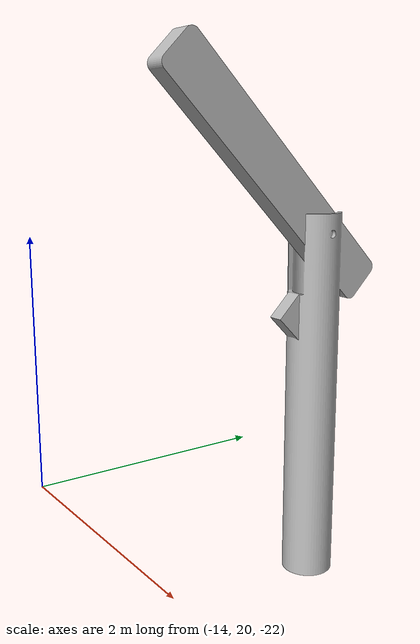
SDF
<sdf version="1.6">
  <model name="lever">
    <link name="link">
    <visual name='visual'>
      <geometry>
        <mesh>
          <uri>model://lever/meshes/lever.stl</uri>
	  <scale>0.01 0.01 0.01</scale>
        </mesh>
      </geometry>
    </visual>

    <collision name='collision'>
      <geometry>
        <mesh>
          <uri>model://lever/meshes/lever.stl</uri>
	        <scale>0.01 0.01 0.01</scale>
        </mesh>
      </geometry>
    </collision>

    </link>
  </model>
</sdf>
